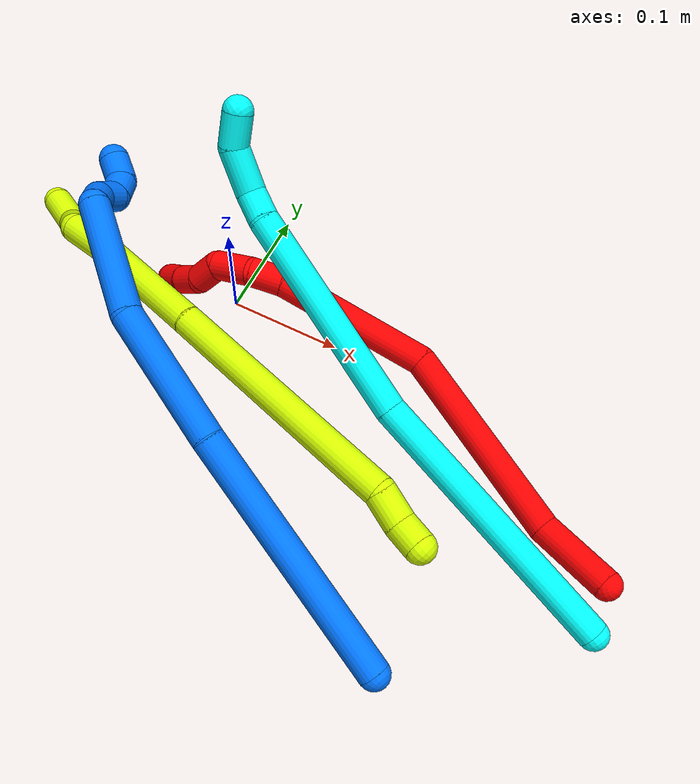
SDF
<sdf version="1.7">
 <world name="default">
  <model name="2">
   <static>0</static>
   <link name="2">
    <collision name="collision-cylinder-e_1_1_4">
     <pose>-0.02005 0.011389 -0.022699 -2.67653 -0.668301 1.94434</pose>
     <geometry><cylinder><radius>0.0125</radius><length>0.064714</length></cylinder></geometry>
     <surface>
      <friction><ode><mu>1.16</mu><mu2>1.16</mu2><slip1>0</slip1><slip2>0</slip2></ode></friction>
      <contact><ode><kp>1e+06</kp><kd>1</kd><max_vel>0</max_vel><min_depth>0.001</min_depth></ode></contact>
     </surface>
    </collision>
    <visual name="visual-cylinder-e_1_1_4">
     <pose>-0.02005 0.011389 -0.022699 -2.67653 -0.668301 1.94434</pose>
     <geometry><cylinder><radius>0.0125</radius><length>0.064714</length></cylinder></geometry>
     <material><ambient>1 0 0 1</ambient></material>
    </visual>
    <collision name="collision-cylinder-e_2_4_5">
     <pose>-0.108999 0.053602 -0.081719 -2.4379 -0.965869 1.91994</pose>
     <geometry><cylinder><radius>0.0125</radius><length>0.167527</length></cylinder></geometry>
     <surface>
      <friction><ode><mu>1.16</mu><mu2>1.16</mu2><slip1>0</slip1><slip2>0</slip2></ode></friction>
      <contact><ode><kp>1e+06</kp><kd>1</kd><max_vel>0</max_vel><min_depth>0.001</min_depth></ode></contact>
     </surface>
    </collision>
    <visual name="visual-cylinder-e_2_4_5">
     <pose>-0.108999 0.053602 -0.081719 -2.4379 -0.965869 1.91994</pose>
     <geometry><cylinder><radius>0.0125</radius><length>0.167527</length></cylinder></geometry>
     <material><ambient>1 0 0 1</ambient></material>
    </visual>
    <collision name="collision-cylinder-e_3_5_6">
     <pose>-0.234221 0.07686 -0.151537 2.91949 -1.02326 -2.74952</pose>
     <geometry><cylinder><radius>0.0125</radius><length>0.131933</length></cylinder></geometry>
     <surface>
      <friction><ode><mu>1.16</mu><mu2>1.16</mu2><slip1>0</slip1><slip2>0</slip2></ode></friction>
      <contact><ode><kp>1e+06</kp><kd>1</kd><max_vel>0</max_vel><min_depth>0.001</min_depth></ode></contact>
     </surface>
    </collision>
    <visual name="visual-cylinder-e_3_5_6">
     <pose>-0.234221 0.07686 -0.151537 2.91949 -1.02326 -2.74952</pose>
     <geometry><cylinder><radius>0.0125</radius><length>0.131933</length></cylinder></geometry>
     <material><ambient>1 0 0 1</ambient></material>
    </visual>
    <collision name="collision-cylinder-e_4_6_7">
     <pose>-0.300809 0.066452 -0.194736 2.85653 -0.793043 -2.48121</pose>
     <geometry><cylinder><radius>0.0125</radius><length>0.028814</length></cylinder></geometry>
     <surface>
      <friction><ode><mu>1.16</mu><mu2>1.16</mu2><slip1>0</slip1><slip2>0</slip2></ode></friction>
      <contact><ode><kp>1e+06</kp><kd>1</kd><max_vel>0</max_vel><min_depth>0.001</min_depth></ode></contact>
     </surface>
    </collision>
    <visual name="visual-cylinder-e_4_6_7">
     <pose>-0.300809 0.066452 -0.194736 2.85653 -0.793043 -2.48121</pose>
     <geometry><cylinder><radius>0.0125</radius><length>0.028814</length></cylinder></geometry>
     <material><ambient>1 0 0 1</ambient></material>
    </visual>
    <collision name="collision-cylinder-e_5_7_8">
     <pose>-0.319236 0.063138 -0.219858 3.111 -0.486589 -3.01848</pose>
     <geometry><cylinder><radius>0.0125</radius><length>0.034908</length></cylinder></geometry>
     <surface>
      <friction><ode><mu>1.16</mu><mu2>1.16</mu2><slip1>0</slip1><slip2>0</slip2></ode></friction>
      <contact><ode><kp>1e+06</kp><kd>1</kd><max_vel>0</max_vel><min_depth>0.001</min_depth></ode></contact>
     </surface>
    </collision>
    <visual name="visual-cylinder-e_5_7_8">
     <pose>-0.319236 0.063138 -0.219858 3.111 -0.486589 -3.01848</pose>
     <geometry><cylinder><radius>0.0125</radius><length>0.034908</length></cylinder></geometry>
     <material><ambient>1 0 0 1</ambient></material>
    </visual>
    <collision name="collision-cylinder-e_6_8_9">
     <pose>-0.325604 0.059287 -0.24752 2.8723 0.140267 0.956785</pose>
     <geometry><cylinder><radius>0.0125</radius><length>0.025649</length></cylinder></geometry>
     <surface>
      <friction><ode><mu>1.16</mu><mu2>1.16</mu2><slip1>0</slip1><slip2>0</slip2></ode></friction>
      <contact><ode><kp>1e+06</kp><kd>1</kd><max_vel>0</max_vel><min_depth>0.001</min_depth></ode></contact>
     </surface>
    </collision>
    <visual name="visual-cylinder-e_6_8_9">
     <pose>-0.325604 0.059287 -0.24752 2.8723 0.140267 0.956785</pose>
     <geometry><cylinder><radius>0.0125</radius><length>0.025649</length></cylinder></geometry>
     <material><ambient>1 0 0 1</ambient></material>
    </visual>
    <collision name="collision-cylinder-e_7_9_10">
     <pose>-0.325827 0.056908 -0.270953 -3.05254 -0.177504 2.21315</pose>
     <geometry><cylinder><radius>0.0125</radius><length>0.022834</length></cylinder></geometry>
     <surface>
      <friction><ode><mu>1.16</mu><mu2>1.16</mu2><slip1>0</slip1><slip2>0</slip2></ode></friction>
      <contact><ode><kp>1e+06</kp><kd>1</kd><max_vel>0</max_vel><min_depth>0.001</min_depth></ode></contact>
     </surface>
    </collision>
    <visual name="visual-cylinder-e_7_9_10">
     <pose>-0.325827 0.056908 -0.270953 -3.05254 -0.177504 2.21315</pose>
     <geometry><cylinder><radius>0.0125</radius><length>0.022834</length></cylinder></geometry>
     <material><ambient>1 0 0 1</ambient></material>
    </visual>
    <collision name="collision-cylinder-e_8_10_2">
     <pose>-0.329557 0.060968 -0.293424 -2.87666 -0.145616 1.00166</pose>
     <geometry><cylinder><radius>0.0125</radius><length>0.023622</length></cylinder></geometry>
     <surface>
      <friction><ode><mu>1.16</mu><mu2>1.16</mu2><slip1>0</slip1><slip2>0</slip2></ode></friction>
      <contact><ode><kp>1e+06</kp><kd>1</kd><max_vel>0</max_vel><min_depth>0.001</min_depth></ode></contact>
     </surface>
    </collision>
    <visual name="visual-cylinder-e_8_10_2">
     <pose>-0.329557 0.060968 -0.293424 -2.87666 -0.145616 1.00166</pose>
     <geometry><cylinder><radius>0.0125</radius><length>0.023622</length></cylinder></geometry>
     <material><ambient>1 0 0 1</ambient></material>
    </visual>
    <collision name="collision-sphere-2">
     <pose>-0.331271 0.064028 -0.304703 0 -0 0</pose>
     <geometry><sphere><radius>0.0125</radius></sphere></geometry>
     <surface>
      <friction><ode><mu>1.16</mu><mu2>1.16</mu2><slip1>0</slip1><slip2>0</slip2></ode></friction>
      <contact><ode><kp>1e+06</kp><kd>1</kd><max_vel>0</max_vel><min_depth>0.001</min_depth></ode></contact>
     </surface>
    </collision>
    <visual name="visual-sphere-2">
     <pose>-0.331271 0.064028 -0.304703 0 -0 0</pose>
     <geometry><sphere><radius>0.0125</radius></sphere></geometry>
     <material><ambient>1 0 0 1</ambient></material>
    </visual>
    <collision name="collision-sphere-10">
     <pose>-0.327843 0.057908 -0.282146 0 -0 0</pose>
     <geometry><sphere><radius>0.0125</radius></sphere></geometry>
     <surface>
      <friction><ode><mu>1.16</mu><mu2>1.16</mu2><slip1>0</slip1><slip2>0</slip2></ode></friction>
      <contact><ode><kp>1e+06</kp><kd>1</kd><max_vel>0</max_vel><min_depth>0.001</min_depth></ode></contact>
     </surface>
    </collision>
    <visual name="visual-sphere-10">
     <pose>-0.327843 0.057908 -0.282146 0 -0 0</pose>
     <geometry><sphere><radius>0.0125</radius></sphere></geometry>
     <material><ambient>1 0 0 1</ambient></material>
    </visual>
    <collision name="collision-sphere-9">
     <pose>-0.323811 0.055909 -0.25976 0 -0 0</pose>
     <geometry><sphere><radius>0.0125</radius></sphere></geometry>
     <surface>
      <friction><ode><mu>1.16</mu><mu2>1.16</mu2><slip1>0</slip1><slip2>0</slip2></ode></friction>
      <contact><ode><kp>1e+06</kp><kd>1</kd><max_vel>0</max_vel><min_depth>0.001</min_depth></ode></contact>
     </surface>
    </collision>
    <visual name="visual-sphere-9">
     <pose>-0.323811 0.055909 -0.25976 0 -0 0</pose>
     <geometry><sphere><radius>0.0125</radius></sphere></geometry>
     <material><ambient>1 0 0 1</ambient></material>
    </visual>
    <collision name="collision-sphere-4">
     <pose>-0.0401 0.022779 -0.045398 0 -0 0</pose>
     <geometry><sphere><radius>0.0125</radius></sphere></geometry>
     <surface>
      <friction><ode><mu>1.16</mu><mu2>1.16</mu2><slip1>0</slip1><slip2>0</slip2></ode></friction>
      <contact><ode><kp>1e+06</kp><kd>1</kd><max_vel>0</max_vel><min_depth>0.001</min_depth></ode></contact>
     </surface>
    </collision>
    <visual name="visual-sphere-4">
     <pose>-0.0401 0.022779 -0.045398 0 -0 0</pose>
     <geometry><sphere><radius>0.0125</radius></sphere></geometry>
     <material><ambient>1 0 0 1</ambient></material>
    </visual>
    <collision name="collision-sphere-1">
     <geometry><sphere><radius>0.0125</radius></sphere></geometry>
     <surface>
      <friction><ode><mu>1.16</mu><mu2>1.16</mu2><slip1>0</slip1><slip2>0</slip2></ode></friction>
      <contact><ode><kp>1e+06</kp><kd>1</kd><max_vel>0</max_vel><min_depth>0.001</min_depth></ode></contact>
     </surface>
    </collision>
    <visual name="visual-sphere-1">
     <geometry><sphere><radius>0.0125</radius></sphere></geometry>
     <material><ambient>1 0 0 1</ambient></material>
    </visual>
    <collision name="collision-sphere-8">
     <pose>-0.327397 0.062666 -0.235279 0 -0 0</pose>
     <geometry><sphere><radius>0.0125</radius></sphere></geometry>
     <surface>
      <friction><ode><mu>1.16</mu><mu2>1.16</mu2><slip1>0</slip1><slip2>0</slip2></ode></friction>
      <contact><ode><kp>1e+06</kp><kd>1</kd><max_vel>0</max_vel><min_depth>0.001</min_depth></ode></contact>
     </surface>
    </collision>
    <visual name="visual-sphere-8">
     <pose>-0.327397 0.062666 -0.235279 0 -0 0</pose>
     <geometry><sphere><radius>0.0125</radius></sphere></geometry>
     <material><ambient>1 0 0 1</ambient></material>
    </visual>
    <collision name="collision-sphere-5">
     <pose>-0.177899 0.084424 -0.11804 0 -0 0</pose>
     <geometry><sphere><radius>0.0125</radius></sphere></geometry>
     <surface>
      <friction><ode><mu>1.16</mu><mu2>1.16</mu2><slip1>0</slip1><slip2>0</slip2></ode></friction>
      <contact><ode><kp>1e+06</kp><kd>1</kd><max_vel>0</max_vel><min_depth>0.001</min_depth></ode></contact>
     </surface>
    </collision>
    <visual name="visual-sphere-5">
     <pose>-0.177899 0.084424 -0.11804 0 -0 0</pose>
     <geometry><sphere><radius>0.0125</radius></sphere></geometry>
     <material><ambient>1 0 0 1</ambient></material>
    </visual>
    <collision name="collision-sphere-6">
     <pose>-0.290544 0.069295 -0.185035 0 -0 0</pose>
     <geometry><sphere><radius>0.0125</radius></sphere></geometry>
     <surface>
      <friction><ode><mu>1.16</mu><mu2>1.16</mu2><slip1>0</slip1><slip2>0</slip2></ode></friction>
      <contact><ode><kp>1e+06</kp><kd>1</kd><max_vel>0</max_vel><min_depth>0.001</min_depth></ode></contact>
     </surface>
    </collision>
    <visual name="visual-sphere-6">
     <pose>-0.290544 0.069295 -0.185035 0 -0 0</pose>
     <geometry><sphere><radius>0.0125</radius></sphere></geometry>
     <material><ambient>1 0 0 1</ambient></material>
    </visual>
    <collision name="collision-sphere-7">
     <pose>-0.311074 0.06361 -0.204437 0 -0 0</pose>
     <geometry><sphere><radius>0.0125</radius></sphere></geometry>
     <surface>
      <friction><ode><mu>1.16</mu><mu2>1.16</mu2><slip1>0</slip1><slip2>0</slip2></ode></friction>
      <contact><ode><kp>1e+06</kp><kd>1</kd><max_vel>0</max_vel><min_depth>0.001</min_depth></ode></contact>
     </surface>
    </collision>
    <visual name="visual-sphere-7">
     <pose>-0.311074 0.06361 -0.204437 0 -0 0</pose>
     <geometry><sphere><radius>0.0125</radius></sphere></geometry>
     <material><ambient>1 0 0 1</ambient></material>
    </visual>
    <inertial>
     <pose>-0.187693 0.056472 -0.135809 0 -0 0</pose>
     <mass>0.5</mass>
     <inertia>
      <ixx>-1.4e-05</ixx>
      <ixy>0</ixy>
      <ixz>0</ixz>
      <iyy>0.000716</iyy>
      <iyz>0</iyz>
      <izz>0.00036</izz>
     </inertia>
    </inertial>
   </link>
   <pose>0.383248 -0.102731 0.022092 -0.256168 0.730458 -0.24162</pose>
  </model>
  <model name="3">
   <static>0</static>
   <link name="3">
    <collision name="collision-cylinder-e_1_1_4">
     <pose>-0.005533 0.022938 -0.111422 -2.93856 -0.048604 0.468479</pose>
     <geometry><cylinder><radius>0.0125</radius><length>0.227787</length></cylinder></geometry>
     <surface>
      <friction><ode><mu>1.16</mu><mu2>1.16</mu2><slip1>0</slip1><slip2>0</slip2></ode></friction>
      <contact><ode><kp>1e+06</kp><kd>1</kd><max_vel>0</max_vel><min_depth>0.001</min_depth></ode></contact>
     </surface>
    </collision>
    <visual name="visual-cylinder-e_1_1_4">
     <pose>-0.005533 0.022938 -0.111422 -2.93856 -0.048604 0.468479</pose>
     <geometry><cylinder><radius>0.0125</radius><length>0.227787</length></cylinder></geometry>
     <material><ambient>0.003922 1 0.996078 1</ambient></material>
    </visual>
    <collision name="collision-cylinder-e_2_4_5">
     <pose>-0.020483 0.050111 -0.312323 -3.09429 -0.104724 2.29371</pose>
     <geometry><cylinder><radius>0.0125</radius><length>0.180144</length></cylinder></geometry>
     <surface>
      <friction><ode><mu>1.16</mu><mu2>1.16</mu2><slip1>0</slip1><slip2>0</slip2></ode></friction>
      <contact><ode><kp>1e+06</kp><kd>1</kd><max_vel>0</max_vel><min_depth>0.001</min_depth></ode></contact>
     </surface>
    </collision>
    <visual name="visual-cylinder-e_2_4_5">
     <pose>-0.020483 0.050111 -0.312323 -3.09429 -0.104724 2.29371</pose>
     <geometry><cylinder><radius>0.0125</radius><length>0.180144</length></cylinder></geometry>
     <material><ambient>0.003922 1 0.996078 1</ambient></material>
    </visual>
    <collision name="collision-cylinder-e_3_5_6">
     <pose>-0.03383 0.055245 -0.413611 -3.06562 -0.320509 2.67977</pose>
     <geometry><cylinder><radius>0.0125</radius><length>0.024959</length></cylinder></geometry>
     <surface>
      <friction><ode><mu>1.16</mu><mu2>1.16</mu2><slip1>0</slip1><slip2>0</slip2></ode></friction>
      <contact><ode><kp>1e+06</kp><kd>1</kd><max_vel>0</max_vel><min_depth>0.001</min_depth></ode></contact>
     </surface>
    </collision>
    <visual name="visual-cylinder-e_3_5_6">
     <pose>-0.03383 0.055245 -0.413611 -3.06562 -0.320509 2.67977</pose>
     <geometry><cylinder><radius>0.0125</radius><length>0.024959</length></cylinder></geometry>
     <material><ambient>0.003922 1 0.996078 1</ambient></material>
    </visual>
    <collision name="collision-cylinder-e_4_6_7">
     <pose>-0.037759 0.048769 -0.443179 2.74794 0.000119 0.000598</pose>
     <geometry><cylinder><radius>0.0125</radius><length>0.038456</length></cylinder></geometry>
     <surface>
      <friction><ode><mu>1.16</mu><mu2>1.16</mu2><slip1>0</slip1><slip2>0</slip2></ode></friction>
      <contact><ode><kp>1e+06</kp><kd>1</kd><max_vel>0</max_vel><min_depth>0.001</min_depth></ode></contact>
     </surface>
    </collision>
    <visual name="visual-cylinder-e_4_6_7">
     <pose>-0.037759 0.048769 -0.443179 2.74794 0.000119 0.000598</pose>
     <geometry><cylinder><radius>0.0125</radius><length>0.038456</length></cylinder></geometry>
     <material><ambient>0.003922 1 0.996078 1</ambient></material>
    </visual>
    <collision name="collision-cylinder-e_5_7_2">
     <pose>-0.040252 0.030358 -0.469725 2.24329 -0.175051 -0.360158</pose>
     <geometry><cylinder><radius>0.0125</radius><length>0.028654</length></cylinder></geometry>
     <surface>
      <friction><ode><mu>1.16</mu><mu2>1.16</mu2><slip1>0</slip1><slip2>0</slip2></ode></friction>
      <contact><ode><kp>1e+06</kp><kd>1</kd><max_vel>0</max_vel><min_depth>0.001</min_depth></ode></contact>
     </surface>
    </collision>
    <visual name="visual-cylinder-e_5_7_2">
     <pose>-0.040252 0.030358 -0.469725 2.24329 -0.175051 -0.360158</pose>
     <geometry><cylinder><radius>0.0125</radius><length>0.028654</length></cylinder></geometry>
     <material><ambient>0.003922 1 0.996078 1</ambient></material>
    </visual>
    <collision name="collision-sphere-2">
     <pose>-0.042747 0.019322 -0.478513 0 -0 0</pose>
     <geometry><sphere><radius>0.0125</radius></sphere></geometry>
     <surface>
      <friction><ode><mu>1.16</mu><mu2>1.16</mu2><slip1>0</slip1><slip2>0</slip2></ode></friction>
      <contact><ode><kp>1e+06</kp><kd>1</kd><max_vel>0</max_vel><min_depth>0.001</min_depth></ode></contact>
     </surface>
    </collision>
    <visual name="visual-sphere-2">
     <pose>-0.042747 0.019322 -0.478513 0 -0 0</pose>
     <geometry><sphere><radius>0.0125</radius></sphere></geometry>
     <material><ambient>0.003922 1 0.996078 1</ambient></material>
    </visual>
    <collision name="collision-sphere-7">
     <pose>-0.037757 0.041394 -0.460936 0 -0 0</pose>
     <geometry><sphere><radius>0.0125</radius></sphere></geometry>
     <surface>
      <friction><ode><mu>1.16</mu><mu2>1.16</mu2><slip1>0</slip1><slip2>0</slip2></ode></friction>
      <contact><ode><kp>1e+06</kp><kd>1</kd><max_vel>0</max_vel><min_depth>0.001</min_depth></ode></contact>
     </surface>
    </collision>
    <visual name="visual-sphere-7">
     <pose>-0.037757 0.041394 -0.460936 0 -0 0</pose>
     <geometry><sphere><radius>0.0125</radius></sphere></geometry>
     <material><ambient>0.003922 1 0.996078 1</ambient></material>
    </visual>
    <collision name="collision-sphere-6">
     <pose>-0.037761 0.056144 -0.425421 0 -0 0</pose>
     <geometry><sphere><radius>0.0125</radius></sphere></geometry>
     <surface>
      <friction><ode><mu>1.16</mu><mu2>1.16</mu2><slip1>0</slip1><slip2>0</slip2></ode></friction>
      <contact><ode><kp>1e+06</kp><kd>1</kd><max_vel>0</max_vel><min_depth>0.001</min_depth></ode></contact>
     </surface>
    </collision>
    <visual name="visual-sphere-6">
     <pose>-0.037761 0.056144 -0.425421 0 -0 0</pose>
     <geometry><sphere><radius>0.0125</radius></sphere></geometry>
     <material><ambient>0.003922 1 0.996078 1</ambient></material>
    </visual>
    <collision name="collision-sphere-5">
     <pose>-0.029898 0.054346 -0.401801 0 -0 0</pose>
     <geometry><sphere><radius>0.0125</radius></sphere></geometry>
     <surface>
      <friction><ode><mu>1.16</mu><mu2>1.16</mu2><slip1>0</slip1><slip2>0</slip2></ode></friction>
      <contact><ode><kp>1e+06</kp><kd>1</kd><max_vel>0</max_vel><min_depth>0.001</min_depth></ode></contact>
     </surface>
    </collision>
    <visual name="visual-sphere-5">
     <pose>-0.029898 0.054346 -0.401801 0 -0 0</pose>
     <geometry><sphere><radius>0.0125</radius></sphere></geometry>
     <material><ambient>0.003922 1 0.996078 1</ambient></material>
    </visual>
    <collision name="collision-sphere-1">
     <geometry><sphere><radius>0.0125</radius></sphere></geometry>
     <surface>
      <friction><ode><mu>1.16</mu><mu2>1.16</mu2><slip1>0</slip1><slip2>0</slip2></ode></friction>
      <contact><ode><kp>1e+06</kp><kd>1</kd><max_vel>0</max_vel><min_depth>0.001</min_depth></ode></contact>
     </surface>
    </collision>
    <visual name="visual-sphere-1">
     <geometry><sphere><radius>0.0125</radius></sphere></geometry>
     <material><ambient>0.003922 1 0.996078 1</ambient></material>
    </visual>
    <collision name="collision-sphere-4">
     <pose>-0.011067 0.045876 -0.222844 0 -0 0</pose>
     <geometry><sphere><radius>0.0125</radius></sphere></geometry>
     <surface>
      <friction><ode><mu>1.16</mu><mu2>1.16</mu2><slip1>0</slip1><slip2>0</slip2></ode></friction>
      <contact><ode><kp>1e+06</kp><kd>1</kd><max_vel>0</max_vel><min_depth>0.001</min_depth></ode></contact>
     </surface>
    </collision>
    <visual name="visual-sphere-4">
     <pose>-0.011067 0.045876 -0.222844 0 -0 0</pose>
     <geometry><sphere><radius>0.0125</radius></sphere></geometry>
     <material><ambient>0.003922 1 0.996078 1</ambient></material>
    </visual>
    <inertial>
     <pose>-0.0168 0.036753 -0.244939 0 -0 0</pose>
     <mass>0.5</mass>
     <inertia>
      <ixx>0.001381</ixx>
      <ixy>0</ixy>
      <ixz>0</ixz>
      <iyy>0.000277</iyy>
      <iyz>0</iyz>
      <izz>-0.000155</izz>
     </inertia>
    </inertial>
   </link>
   <pose>0.388506 -0.139499 0.011616 -2.04721 -0.344748 -1.77319</pose>
  </model>
  <model name="14">
   <static>0</static>
   <link name="14">
    <collision name="collision-cylinder-e_1_1_4">
     <pose>-0.02281 -0.016704 -0.097624 2.97213 -0.226355 -1.85813</pose>
     <geometry><cylinder><radius>0.0125</radius><length>0.203271</length></cylinder></geometry>
     <surface>
      <friction><ode><mu>1.16</mu><mu2>1.16</mu2><slip1>0</slip1><slip2>0</slip2></ode></friction>
      <contact><ode><kp>1e+06</kp><kd>1</kd><max_vel>0</max_vel><min_depth>0.001</min_depth></ode></contact>
     </surface>
    </collision>
    <visual name="visual-cylinder-e_1_1_4">
     <pose>-0.02281 -0.016704 -0.097624 2.97213 -0.226355 -1.85813</pose>
     <geometry><cylinder><radius>0.0125</radius><length>0.203271</length></cylinder></geometry>
     <material><ambient>0 0.462745 1 1</ambient></material>
    </visual>
    <collision name="collision-cylinder-e_2_4_5">
     <pose>-0.055418 -0.03618 -0.250263 3.09123 -0.176047 -2.58559</pose>
     <geometry><cylinder><radius>0.0125</radius><length>0.111898</length></cylinder></geometry>
     <surface>
      <friction><ode><mu>1.16</mu><mu2>1.16</mu2><slip1>0</slip1><slip2>0</slip2></ode></friction>
      <contact><ode><kp>1e+06</kp><kd>1</kd><max_vel>0</max_vel><min_depth>0.001</min_depth></ode></contact>
     </surface>
    </collision>
    <visual name="visual-cylinder-e_2_4_5">
     <pose>-0.055418 -0.03618 -0.250263 3.09123 -0.176047 -2.58559</pose>
     <geometry><cylinder><radius>0.0125</radius><length>0.111898</length></cylinder></geometry>
     <material><ambient>0 0.462745 1 1</ambient></material>
    </visual>
    <collision name="collision-cylinder-e_3_5_6">
     <pose>-0.077861 -0.026862 -0.351955 -2.88813 -0.256441 1.58262</pose>
     <geometry><cylinder><radius>0.0125</radius><length>0.099697</length></cylinder></geometry>
     <surface>
      <friction><ode><mu>1.16</mu><mu2>1.16</mu2><slip1>0</slip1><slip2>0</slip2></ode></friction>
      <contact><ode><kp>1e+06</kp><kd>1</kd><max_vel>0</max_vel><min_depth>0.001</min_depth></ode></contact>
     </surface>
    </collision>
    <visual name="visual-cylinder-e_3_5_6">
     <pose>-0.077861 -0.026862 -0.351955 -2.88813 -0.256441 1.58262</pose>
     <geometry><cylinder><radius>0.0125</radius><length>0.099697</length></cylinder></geometry>
     <material><ambient>0 0.462745 1 1</ambient></material>
    </visual>
    <collision name="collision-cylinder-e_4_6_7">
     <pose>-0.088207 -0.005834 -0.405769 -2.24463 0.198219 -0.407558</pose>
     <geometry><cylinder><radius>0.0125</radius><length>0.02333</length></cylinder></geometry>
     <surface>
      <friction><ode><mu>1.16</mu><mu2>1.16</mu2><slip1>0</slip1><slip2>0</slip2></ode></friction>
      <contact><ode><kp>1e+06</kp><kd>1</kd><max_vel>0</max_vel><min_depth>0.001</min_depth></ode></contact>
     </surface>
    </collision>
    <visual name="visual-cylinder-e_4_6_7">
     <pose>-0.088207 -0.005834 -0.405769 -2.24463 0.198219 -0.407558</pose>
     <geometry><cylinder><radius>0.0125</radius><length>0.02333</length></cylinder></geometry>
     <material><ambient>0 0.462745 1 1</ambient></material>
    </visual>
    <collision name="collision-cylinder-e_5_7_8">
     <pose>-0.085186 0.013114 -0.414034 -1.68304 0.071802 -0.080341</pose>
     <geometry><cylinder><radius>0.0125</radius><length>0.020202</length></cylinder></geometry>
     <surface>
      <friction><ode><mu>1.16</mu><mu2>1.16</mu2><slip1>0</slip1><slip2>0</slip2></ode></friction>
      <contact><ode><kp>1e+06</kp><kd>1</kd><max_vel>0</max_vel><min_depth>0.001</min_depth></ode></contact>
     </surface>
    </collision>
    <visual name="visual-cylinder-e_5_7_8">
     <pose>-0.085186 0.013114 -0.414034 -1.68304 0.071802 -0.080341</pose>
     <geometry><cylinder><radius>0.0125</radius><length>0.020202</length></cylinder></geometry>
     <material><ambient>0 0.462745 1 1</ambient></material>
    </visual>
    <collision name="collision-cylinder-e_6_8_9">
     <pose>-0.08672 0.030487 -0.421714 -2.29809 -0.225344 0.494078</pose>
     <geometry><cylinder><radius>0.0125</radius><length>0.02022</length></cylinder></geometry>
     <surface>
      <friction><ode><mu>1.16</mu><mu2>1.16</mu2><slip1>0</slip1><slip2>0</slip2></ode></friction>
      <contact><ode><kp>1e+06</kp><kd>1</kd><max_vel>0</max_vel><min_depth>0.001</min_depth></ode></contact>
     </surface>
    </collision>
    <visual name="visual-cylinder-e_6_8_9">
     <pose>-0.08672 0.030487 -0.421714 -2.29809 -0.225344 0.494078</pose>
     <geometry><cylinder><radius>0.0125</radius><length>0.02022</length></cylinder></geometry>
     <material><ambient>0 0.462745 1 1</ambient></material>
    </visual>
    <collision name="collision-cylinder-e_7_9_2">
     <pose>-0.092505 0.039338 -0.438248 -2.9934 -0.336138 2.31675</pose>
     <geometry><cylinder><radius>0.0125</radius><length>0.021383</length></cylinder></geometry>
     <surface>
      <friction><ode><mu>1.16</mu><mu2>1.16</mu2><slip1>0</slip1><slip2>0</slip2></ode></friction>
      <contact><ode><kp>1e+06</kp><kd>1</kd><max_vel>0</max_vel><min_depth>0.001</min_depth></ode></contact>
     </surface>
    </collision>
    <visual name="visual-cylinder-e_7_9_2">
     <pose>-0.092505 0.039338 -0.438248 -2.9934 -0.336138 2.31675</pose>
     <geometry><cylinder><radius>0.0125</radius><length>0.021383</length></cylinder></geometry>
     <material><ambient>0 0.462745 1 1</ambient></material>
    </visual>
    <collision name="collision-sphere-2">
     <pose>-0.096032 0.040828 -0.44823 0 -0 0</pose>
     <geometry><sphere><radius>0.0125</radius></sphere></geometry>
     <surface>
      <friction><ode><mu>1.16</mu><mu2>1.16</mu2><slip1>0</slip1><slip2>0</slip2></ode></friction>
      <contact><ode><kp>1e+06</kp><kd>1</kd><max_vel>0</max_vel><min_depth>0.001</min_depth></ode></contact>
     </surface>
    </collision>
    <visual name="visual-sphere-2">
     <pose>-0.096032 0.040828 -0.44823 0 -0 0</pose>
     <geometry><sphere><radius>0.0125</radius></sphere></geometry>
     <material><ambient>0 0.462745 1 1</ambient></material>
    </visual>
    <collision name="collision-sphere-9">
     <pose>-0.088979 0.037847 -0.428265 0 -0 0</pose>
     <geometry><sphere><radius>0.0125</radius></sphere></geometry>
     <surface>
      <friction><ode><mu>1.16</mu><mu2>1.16</mu2><slip1>0</slip1><slip2>0</slip2></ode></friction>
      <contact><ode><kp>1e+06</kp><kd>1</kd><max_vel>0</max_vel><min_depth>0.001</min_depth></ode></contact>
     </surface>
    </collision>
    <visual name="visual-sphere-9">
     <pose>-0.088979 0.037847 -0.428265 0 -0 0</pose>
     <geometry><sphere><radius>0.0125</radius></sphere></geometry>
     <material><ambient>0 0.462745 1 1</ambient></material>
    </visual>
    <collision name="collision-sphere-4">
     <pose>-0.045619 -0.033407 -0.195248 0 -0 0</pose>
     <geometry><sphere><radius>0.0125</radius></sphere></geometry>
     <surface>
      <friction><ode><mu>1.16</mu><mu2>1.16</mu2><slip1>0</slip1><slip2>0</slip2></ode></friction>
      <contact><ode><kp>1e+06</kp><kd>1</kd><max_vel>0</max_vel><min_depth>0.001</min_depth></ode></contact>
     </surface>
    </collision>
    <visual name="visual-sphere-4">
     <pose>-0.045619 -0.033407 -0.195248 0 -0 0</pose>
     <geometry><sphere><radius>0.0125</radius></sphere></geometry>
     <material><ambient>0 0.462745 1 1</ambient></material>
    </visual>
    <collision name="collision-sphere-1">
     <geometry><sphere><radius>0.0125</radius></sphere></geometry>
     <surface>
      <friction><ode><mu>1.16</mu><mu2>1.16</mu2><slip1>0</slip1><slip2>0</slip2></ode></friction>
      <contact><ode><kp>1e+06</kp><kd>1</kd><max_vel>0</max_vel><min_depth>0.001</min_depth></ode></contact>
     </surface>
    </collision>
    <visual name="visual-sphere-1">
     <geometry><sphere><radius>0.0125</radius></sphere></geometry>
     <material><ambient>0 0.462745 1 1</ambient></material>
    </visual>
    <collision name="collision-sphere-8">
     <pose>-0.084461 0.023126 -0.415162 0 -0 0</pose>
     <geometry><sphere><radius>0.0125</radius></sphere></geometry>
     <surface>
      <friction><ode><mu>1.16</mu><mu2>1.16</mu2><slip1>0</slip1><slip2>0</slip2></ode></friction>
      <contact><ode><kp>1e+06</kp><kd>1</kd><max_vel>0</max_vel><min_depth>0.001</min_depth></ode></contact>
     </surface>
    </collision>
    <visual name="visual-sphere-8">
     <pose>-0.084461 0.023126 -0.415162 0 -0 0</pose>
     <geometry><sphere><radius>0.0125</radius></sphere></geometry>
     <material><ambient>0 0.462745 1 1</ambient></material>
    </visual>
    <collision name="collision-sphere-5">
     <pose>-0.065217 -0.038953 -0.305277 0 -0 0</pose>
     <geometry><sphere><radius>0.0125</radius></sphere></geometry>
     <surface>
      <friction><ode><mu>1.16</mu><mu2>1.16</mu2><slip1>0</slip1><slip2>0</slip2></ode></friction>
      <contact><ode><kp>1e+06</kp><kd>1</kd><max_vel>0</max_vel><min_depth>0.001</min_depth></ode></contact>
     </surface>
    </collision>
    <visual name="visual-sphere-5">
     <pose>-0.065217 -0.038953 -0.305277 0 -0 0</pose>
     <geometry><sphere><radius>0.0125</radius></sphere></geometry>
     <material><ambient>0 0.462745 1 1</ambient></material>
    </visual>
    <collision name="collision-sphere-6">
     <pose>-0.090504 -0.014771 -0.398633 0 -0 0</pose>
     <geometry><sphere><radius>0.0125</radius></sphere></geometry>
     <surface>
      <friction><ode><mu>1.16</mu><mu2>1.16</mu2><slip1>0</slip1><slip2>0</slip2></ode></friction>
      <contact><ode><kp>1e+06</kp><kd>1</kd><max_vel>0</max_vel><min_depth>0.001</min_depth></ode></contact>
     </surface>
    </collision>
    <visual name="visual-sphere-6">
     <pose>-0.090504 -0.014771 -0.398633 0 -0 0</pose>
     <geometry><sphere><radius>0.0125</radius></sphere></geometry>
     <material><ambient>0 0.462745 1 1</ambient></material>
    </visual>
    <collision name="collision-sphere-7">
     <pose>-0.08591 0.003103 -0.412905 0 -0 0</pose>
     <geometry><sphere><radius>0.0125</radius></sphere></geometry>
     <surface>
      <friction><ode><mu>1.16</mu><mu2>1.16</mu2><slip1>0</slip1><slip2>0</slip2></ode></friction>
      <contact><ode><kp>1e+06</kp><kd>1</kd><max_vel>0</max_vel><min_depth>0.001</min_depth></ode></contact>
     </surface>
    </collision>
    <visual name="visual-sphere-7">
     <pose>-0.08591 0.003103 -0.412905 0 -0 0</pose>
     <geometry><sphere><radius>0.0125</radius></sphere></geometry>
     <material><ambient>0 0.462745 1 1</ambient></material>
    </visual>
    <inertial>
     <pose>-0.052221 -0.017071 -0.237331 0 -0 0</pose>
     <mass>0.5</mass>
     <inertia>
      <ixx>-0.000942</ixx>
      <ixy>0</ixy>
      <ixz>0</ixz>
      <iyy>-0.000304</iyy>
      <iyz>0</iyz>
      <izz>0.000264</izz>
     </inertia>
    </inertial>
   </link>
   <pose>0.256264 -0.249366 0.046613 -1.66247 0.884517 -2.05252</pose>
  </model>
  <model name="15">
   <static>0</static>
   <link name="15">
    <collision name="collision-cylinder-e_1_1_4">
     <pose>-0.004586 0.000871 -0.009746 -3.05248 -0.43828 2.74642</pose>
     <geometry><cylinder><radius>0.0125</radius><length>0.021612</length></cylinder></geometry>
     <surface>
      <friction><ode><mu>1.16</mu><mu2>1.16</mu2><slip1>0</slip1><slip2>0</slip2></ode></friction>
      <contact><ode><kp>1e+06</kp><kd>1</kd><max_vel>0</max_vel><min_depth>0.001</min_depth></ode></contact>
     </surface>
    </collision>
    <visual name="visual-cylinder-e_1_1_4">
     <pose>-0.004586 0.000871 -0.009746 -3.05248 -0.43828 2.74642</pose>
     <geometry><cylinder><radius>0.0125</radius><length>0.021612</length></cylinder></geometry>
     <material><ambient>0.835294 1 0 1</ambient></material>
    </visual>
    <collision name="collision-cylinder-e_2_4_5">
     <pose>-0.011121 -0.000366 -0.032602 2.98216 -0.145767 -1.48093</pose>
     <geometry><cylinder><radius>0.0125</radius><length>0.026841</length></cylinder></geometry>
     <surface>
      <friction><ode><mu>1.16</mu><mu2>1.16</mu2><slip1>0</slip1><slip2>0</slip2></ode></friction>
      <contact><ode><kp>1e+06</kp><kd>1</kd><max_vel>0</max_vel><min_depth>0.001</min_depth></ode></contact>
     </surface>
    </collision>
    <visual name="visual-cylinder-e_2_4_5">
     <pose>-0.011121 -0.000366 -0.032602 2.98216 -0.145767 -1.48093</pose>
     <geometry><cylinder><radius>0.0125</radius><length>0.026841</length></cylinder></geometry>
     <material><ambient>0.835294 1 0 1</ambient></material>
    </visual>
    <collision name="collision-cylinder-e_3_5_6">
     <pose>-0.050063 0.017571 -0.140682 -2.93357 -0.364122 2.10997</pose>
     <geometry><cylinder><radius>0.0125</radius><length>0.207746</length></cylinder></geometry>
     <surface>
      <friction><ode><mu>1.16</mu><mu2>1.16</mu2><slip1>0</slip1><slip2>0</slip2></ode></friction>
      <contact><ode><kp>1e+06</kp><kd>1</kd><max_vel>0</max_vel><min_depth>0.001</min_depth></ode></contact>
     </surface>
    </collision>
    <visual name="visual-cylinder-e_3_5_6">
     <pose>-0.050063 0.017571 -0.140682 -2.93357 -0.364122 2.10997</pose>
     <geometry><cylinder><radius>0.0125</radius><length>0.207746</length></cylinder></geometry>
     <material><ambient>0.835294 1 0 1</ambient></material>
    </visual>
    <collision name="collision-cylinder-e_4_6_7">
     <pose>-0.111321 0.049944 -0.283801 -2.89096 -0.45419 2.14334</pose>
     <geometry><cylinder><radius>0.0125</radius><length>0.110618</length></cylinder></geometry>
     <surface>
      <friction><ode><mu>1.16</mu><mu2>1.16</mu2><slip1>0</slip1><slip2>0</slip2></ode></friction>
      <contact><ode><kp>1e+06</kp><kd>1</kd><max_vel>0</max_vel><min_depth>0.001</min_depth></ode></contact>
     </surface>
    </collision>
    <visual name="visual-cylinder-e_4_6_7">
     <pose>-0.111321 0.049944 -0.283801 -2.89096 -0.45419 2.14334</pose>
     <geometry><cylinder><radius>0.0125</radius><length>0.110618</length></cylinder></geometry>
     <material><ambient>0.835294 1 0 1</ambient></material>
    </visual>
    <collision name="collision-cylinder-e_5_7_8">
     <pose>-0.144243 0.06851 -0.349707 -2.80373 -0.43104 1.81789</pose>
     <geometry><cylinder><radius>0.0125</radius><length>0.041434</length></cylinder></geometry>
     <surface>
      <friction><ode><mu>1.16</mu><mu2>1.16</mu2><slip1>0</slip1><slip2>0</slip2></ode></friction>
      <contact><ode><kp>1e+06</kp><kd>1</kd><max_vel>0</max_vel><min_depth>0.001</min_depth></ode></contact>
     </surface>
    </collision>
    <visual name="visual-cylinder-e_5_7_8">
     <pose>-0.144243 0.06851 -0.349707 -2.80373 -0.43104 1.81789</pose>
     <geometry><cylinder><radius>0.0125</radius><length>0.041434</length></cylinder></geometry>
     <material><ambient>0.835294 1 0 1</ambient></material>
    </visual>
    <collision name="collision-cylinder-e_6_8_9">
     <pose>-0.17772 0.081996 -0.376396 -2.45987 -1.13689 2.1278</pose>
     <geometry><cylinder><radius>0.0125</radius><length>0.054714</length></cylinder></geometry>
     <surface>
      <friction><ode><mu>1.16</mu><mu2>1.16</mu2><slip1>0</slip1><slip2>0</slip2></ode></friction>
      <contact><ode><kp>1e+06</kp><kd>1</kd><max_vel>0</max_vel><min_depth>0.001</min_depth></ode></contact>
     </surface>
    </collision>
    <visual name="visual-cylinder-e_6_8_9">
     <pose>-0.17772 0.081996 -0.376396 -2.45987 -1.13689 2.1278</pose>
     <geometry><cylinder><radius>0.0125</radius><length>0.054714</length></cylinder></geometry>
     <material><ambient>0.835294 1 0 1</ambient></material>
    </visual>
    <collision name="collision-cylinder-e_7_9_2">
     <pose>-0.213204 0.090815 -0.400385 -3.03756 -0.613558 2.8158</pose>
     <geometry><cylinder><radius>0.0125</radius><length>0.037035</length></cylinder></geometry>
     <surface>
      <friction><ode><mu>1.16</mu><mu2>1.16</mu2><slip1>0</slip1><slip2>0</slip2></ode></friction>
      <contact><ode><kp>1e+06</kp><kd>1</kd><max_vel>0</max_vel><min_depth>0.001</min_depth></ode></contact>
     </surface>
    </collision>
    <visual name="visual-cylinder-e_7_9_2">
     <pose>-0.213204 0.090815 -0.400385 -3.03756 -0.613558 2.8158</pose>
     <geometry><cylinder><radius>0.0125</radius><length>0.037035</length></cylinder></geometry>
     <material><ambient>0.835294 1 0 1</ambient></material>
    </visual>
    <collision name="collision-sphere-2">
     <pose>-0.223866 0.092388 -0.415443 0 -0 0</pose>
     <geometry><sphere><radius>0.0125</radius></sphere></geometry>
     <surface>
      <friction><ode><mu>1.16</mu><mu2>1.16</mu2><slip1>0</slip1><slip2>0</slip2></ode></friction>
      <contact><ode><kp>1e+06</kp><kd>1</kd><max_vel>0</max_vel><min_depth>0.001</min_depth></ode></contact>
     </surface>
    </collision>
    <visual name="visual-sphere-2">
     <pose>-0.223866 0.092388 -0.415443 0 -0 0</pose>
     <geometry><sphere><radius>0.0125</radius></sphere></geometry>
     <material><ambient>0.835294 1 0 1</ambient></material>
    </visual>
    <collision name="collision-sphere-9">
     <pose>-0.202542 0.089243 -0.385327 0 -0 0</pose>
     <geometry><sphere><radius>0.0125</radius></sphere></geometry>
     <surface>
      <friction><ode><mu>1.16</mu><mu2>1.16</mu2><slip1>0</slip1><slip2>0</slip2></ode></friction>
      <contact><ode><kp>1e+06</kp><kd>1</kd><max_vel>0</max_vel><min_depth>0.001</min_depth></ode></contact>
     </surface>
    </collision>
    <visual name="visual-sphere-9">
     <pose>-0.202542 0.089243 -0.385327 0 -0 0</pose>
     <geometry><sphere><radius>0.0125</radius></sphere></geometry>
     <material><ambient>0.835294 1 0 1</ambient></material>
    </visual>
    <collision name="collision-sphere-4">
     <pose>-0.009172 0.001742 -0.019492 0 -0 0</pose>
     <geometry><sphere><radius>0.0125</radius></sphere></geometry>
     <surface>
      <friction><ode><mu>1.16</mu><mu2>1.16</mu2><slip1>0</slip1><slip2>0</slip2></ode></friction>
      <contact><ode><kp>1e+06</kp><kd>1</kd><max_vel>0</max_vel><min_depth>0.001</min_depth></ode></contact>
     </surface>
    </collision>
    <visual name="visual-sphere-4">
     <pose>-0.009172 0.001742 -0.019492 0 -0 0</pose>
     <geometry><sphere><radius>0.0125</radius></sphere></geometry>
     <material><ambient>0.835294 1 0 1</ambient></material>
    </visual>
    <collision name="collision-sphere-1">
     <geometry><sphere><radius>0.0125</radius></sphere></geometry>
     <surface>
      <friction><ode><mu>1.16</mu><mu2>1.16</mu2><slip1>0</slip1><slip2>0</slip2></ode></friction>
      <contact><ode><kp>1e+06</kp><kd>1</kd><max_vel>0</max_vel><min_depth>0.001</min_depth></ode></contact>
     </surface>
    </collision>
    <visual name="visual-sphere-1">
     <geometry><sphere><radius>0.0125</radius></sphere></geometry>
     <material><ambient>0.835294 1 0 1</ambient></material>
    </visual>
    <collision name="collision-sphere-8">
     <pose>-0.152899 0.074748 -0.367465 0 -0 0</pose>
     <geometry><sphere><radius>0.0125</radius></sphere></geometry>
     <surface>
      <friction><ode><mu>1.16</mu><mu2>1.16</mu2><slip1>0</slip1><slip2>0</slip2></ode></friction>
      <contact><ode><kp>1e+06</kp><kd>1</kd><max_vel>0</max_vel><min_depth>0.001</min_depth></ode></contact>
     </surface>
    </collision>
    <visual name="visual-sphere-8">
     <pose>-0.152899 0.074748 -0.367465 0 -0 0</pose>
     <geometry><sphere><radius>0.0125</radius></sphere></geometry>
     <material><ambient>0.835294 1 0 1</ambient></material>
    </visual>
    <collision name="collision-sphere-5">
     <pose>-0.013071 -0.002475 -0.045712 0 -0 0</pose>
     <geometry><sphere><radius>0.0125</radius></sphere></geometry>
     <surface>
      <friction><ode><mu>1.16</mu><mu2>1.16</mu2><slip1>0</slip1><slip2>0</slip2></ode></friction>
      <contact><ode><kp>1e+06</kp><kd>1</kd><max_vel>0</max_vel><min_depth>0.001</min_depth></ode></contact>
     </surface>
    </collision>
    <visual name="visual-sphere-5">
     <pose>-0.013071 -0.002475 -0.045712 0 -0 0</pose>
     <geometry><sphere><radius>0.0125</radius></sphere></geometry>
     <material><ambient>0.835294 1 0 1</ambient></material>
    </visual>
    <collision name="collision-sphere-6">
     <pose>-0.087055 0.037617 -0.235652 0 -0 0</pose>
     <geometry><sphere><radius>0.0125</radius></sphere></geometry>
     <surface>
      <friction><ode><mu>1.16</mu><mu2>1.16</mu2><slip1>0</slip1><slip2>0</slip2></ode></friction>
      <contact><ode><kp>1e+06</kp><kd>1</kd><max_vel>0</max_vel><min_depth>0.001</min_depth></ode></contact>
     </surface>
    </collision>
    <visual name="visual-sphere-6">
     <pose>-0.087055 0.037617 -0.235652 0 -0 0</pose>
     <geometry><sphere><radius>0.0125</radius></sphere></geometry>
     <material><ambient>0.835294 1 0 1</ambient></material>
    </visual>
    <collision name="collision-sphere-7">
     <pose>-0.135587 0.062271 -0.331949 0 -0 0</pose>
     <geometry><sphere><radius>0.0125</radius></sphere></geometry>
     <surface>
      <friction><ode><mu>1.16</mu><mu2>1.16</mu2><slip1>0</slip1><slip2>0</slip2></ode></friction>
      <contact><ode><kp>1e+06</kp><kd>1</kd><max_vel>0</max_vel><min_depth>0.001</min_depth></ode></contact>
     </surface>
    </collision>
    <visual name="visual-sphere-7">
     <pose>-0.135587 0.062271 -0.331949 0 -0 0</pose>
     <geometry><sphere><radius>0.0125</radius></sphere></geometry>
     <material><ambient>0.835294 1 0 1</ambient></material>
    </visual>
    <inertial>
     <pose>-0.093417 0.039744 -0.223235 0 -0 0</pose>
     <mass>0.5</mass>
     <inertia>
      <ixx>0.000258</ixx>
      <ixy>0</ixy>
      <ixz>0</ixz>
      <iyy>0.001236</iyy>
      <iyz>0</iyz>
      <izz>0.000131</izz>
     </inertia>
    </inertial>
   </link>
   <pose>0.24953 -0.169063 0.101422 -2.16105 -0.878942 -1.36797</pose>
  </model>
 </world>
</sdf>
